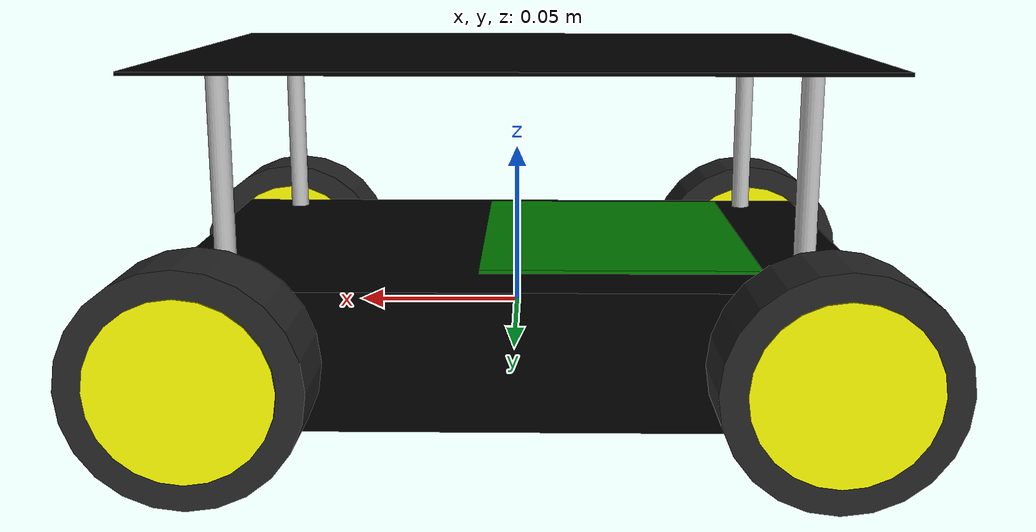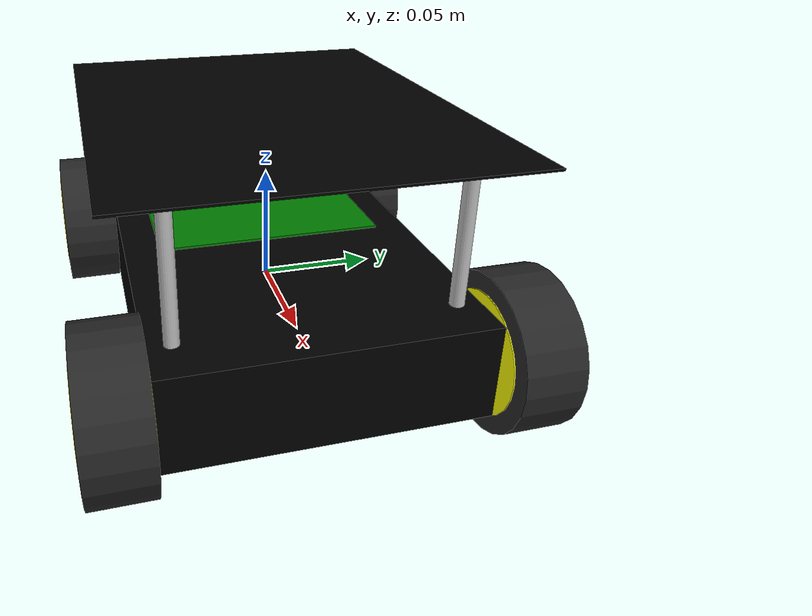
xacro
<?xml version="1.0"?>
<robot xmlns:xacro="http://www.ros.org/wiki/xacro" name="dfrobot_pirate">

  <xacro:include filename="$(find dfrobot_robots)/urdf/common.xacro" />

  <xacro:property name="base_plate_length" value="0.2" />
  <xacro:property name="base_plate_height" value="0.04" />
  <xacro:property name="base_plate_width" value="${0.18-2*wheel_width}" />

  <xacro:property name="spacer_length" value="0.06" />

  <link name="base_link">
    <visual>
      <geometry>
        <box size="${base_plate_length} ${base_plate_width} ${base_plate_height}"/>
      </geometry>
      <material name="black"/>
    </visual>
    <collision>
      <geometry>
        <box size="${base_plate_length} ${base_plate_width} ${base_plate_height}"/>
      </geometry>
    </collision>
  </link>

  <link name="top_plate">
    <visual>
      <geometry>
        <box size="${base_plate_length} ${base_plate_width+wheel_width} 0.001"/>
      </geometry>
      <material name="black"/>
    </visual>
    <collision>
      <geometry>
        <box size="${base_plate_length} ${base_plate_width+wheel_width} 0.001"/>
      </geometry>
    </collision>
  </link>

  <joint name="top_plate_to_base_joint" type="fixed">
    <parent link="base_link"/>
    <child link="top_plate"/>
    <origin rpy="0 0 0" xyz="0 0 ${spacer_length+base_plate_height/2}"/>
  </joint>

  <joint name="controlboard_to_base_joint" type="fixed">
    <parent link="base_link"/>
    <child link="control_board"/>
    <origin rpy="0 0 0" xyz="-0.03 0 ${base_plate_height/2 + 0.002}"/>
  </joint>

  <xacro:macro name="spacer" params="suffix *origin">
    <link name="spacer_${suffix}">
      <visual>
        <geometry>
          <cylinder length="${spacer_length}" radius="0.003"/>
        </geometry>
        <material name="silver"/>
      </visual>
    </link>

    <joint name="base_to_spacer${suffix}_joint" type="fixed">
      <parent link="base_link"/>
      <child link="spacer_${suffix}"/>
      <xacro:insert_block name="origin" />
    </joint>
  </xacro:macro>

  <xacro:spacer suffix="front_left">
    <origin rpy="0 0 0" xyz="${base_plate_length/2 - 0.02} ${base_plate_width/2 - 0.01} ${(base_plate_height+spacer_length)/2}"/>
  </xacro:spacer>
  <xacro:spacer suffix="front_right">
    <origin rpy="0 0 0" xyz="${base_plate_length/2 - 0.02} ${-(base_plate_width/2 - 0.01)} ${(base_plate_height+spacer_length)/2}"/>
  </xacro:spacer>
  <xacro:spacer suffix="rear_left">
    <origin rpy="0 0 0" xyz="${-(base_plate_length/2 - 0.02)} ${base_plate_width/2 - 0.01} ${(base_plate_height+spacer_length)/2}"/>
  </xacro:spacer>
  <xacro:spacer suffix="rear_right">
    <origin rpy="0 0 0" xyz="${-(base_plate_length/2 - 0.02)} ${-(base_plate_width/2 - 0.01)} ${(base_plate_height+spacer_length)/2}"/>
  </xacro:spacer>

  <xacro:wheel suffix="front_left" parent="base_link">
    <origin rpy="${-pi/2}  0 0" xyz="${base_plate_length/2 - 0.015} ${base_plate_width/2+wheel_width/2} 0"/>
  </xacro:wheel>
  <xacro:wheel suffix="front_right"  parent="base_link">
    <origin rpy="${-pi/2} 0 0" xyz="${base_plate_length/2 - 0.015} ${-(base_plate_width/2+wheel_width/2)} 0"/>
  </xacro:wheel>
  <xacro:wheel suffix="rear_left" parent="base_link">
    <origin rpy="${-pi/2}  0 0" xyz="${-base_plate_length/2 + 0.015} ${base_plate_width/2+wheel_width/2} 0"/>
  </xacro:wheel>
  <xacro:wheel suffix="rear_right"  parent="base_link">
    <origin rpy="${-pi/2} 0 0" xyz="${-base_plate_length/2 + 0.015} ${-(base_plate_width/2+wheel_width/2)} 0"/>
  </xacro:wheel>

</robot>

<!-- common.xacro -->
<robot xmlns:xacro="http://www.ros.org/wiki/xacro">

  <xacro:include filename="$(find dfrobot_robots)/urdf/materials.xacro" />

  <!-- Wheels -->
  <xacro:property name="wheel_radius" value="0.0325" />
  <xacro:property name="wheel_rim_radius" value="0.025" />
  <xacro:property name="wheel_width" value="0.025" />

  <xacro:macro name="wheel" params="suffix parent *origin">
    <link name="wheel_${suffix}">
      <visual>
        <geometry>
          <cylinder length="${wheel_width}" radius="${wheel_radius}"/>
        </geometry>
        <material name="rubber"/>
      </visual>
      <collision>
        <geometry>
          <cylinder length="${wheel_width}" radius="${wheel_radius}"/>
        </geometry>
      </collision>
      <inertial>
        <mass value="0.2"/>
        <inertia ixx="1e-6" ixy="0" ixz="0" iyy="1e-6" iyz="0" izz="1e-6" />
      </inertial>
    </link>

    <gazebo reference="wheel_${suffix}">
      <mu1 value="200.0"/>
      <mu2 value="100.0"/>
      <kp value="10000000.0" />
      <kd value="1.0" />
      <material>Gazebo/DarkGrey</material>
    </gazebo>

    <joint name="base_to_wheel_${suffix}_joint" type="continuous">
      <parent link="${parent}"/>
      <child link="wheel_${suffix}"/>
      <axis xyz="0 0 1"/>
      <xacro:insert_block name="origin" />
    </joint>

    <transmission name="wheel_${suffix}_trans">
      <type>transmission_interface/SimpleTransmission</type>
      <actuator name="wheel_${suffix}_motor">
        <mechanicalReduction>1</mechanicalReduction>
      </actuator>
      <joint name="base_to_wheel_${suffix}_joint">
        <hardwareInterface>hardware_interface/VelocityJointInterface</hardwareInterface>
      </joint>
    </transmission>

    <link name="wheel_rim_${suffix}">
      <visual>
        <geometry>
          <cylinder length="${0.001+wheel_width}" radius="${wheel_rim_radius}"/>
        </geometry>
        <material name="yellow"/>
      </visual>
      <inertial>
        <mass value="0.1"/>
        <inertia ixx="1e-6" ixy="0" ixz="0" iyy="1e-6" iyz="0" izz="1e-6" />
      </inertial>
    </link>

    <gazebo reference="wheel_rim_${suffix}">
      <material>Gazebo/Yellow</material>
    </gazebo>

    <joint name="wheel_${suffix}_to_rim_joint" type="fixed">
      <parent link="wheel_${suffix}"/>
      <child link="wheel_rim_${suffix}"/>
      <origin rpy="0 0 0" xyz="0 0 0"/>
    </joint>

  </xacro:macro>

  <!-- Control board -->
  <link name="control_board">
    <visual>
      <geometry>
        <box size="0.08 0.1 0.001"/>
      </geometry>
      <material name="green"/>
    </visual>
    <inertial>
      <mass value="0.1"/>
      <inertia ixx="1e-6" ixy="0" ixz="0" iyy="1e-6" iyz="0" izz="1e-6" />
    </inertial>
  </link>

  <gazebo reference="control_board">
    <material>Gazebo/Green</material>
  </gazebo>

  <!-- ros_control plugin -->
  <gazebo>
    <plugin name="gazebo_ros_control" filename="libgazebo_ros_control.so">
      <robotSimType>gazebo_ros_control/DefaultRobotHWSim</robotSimType>
    </plugin>
  </gazebo>

</robot>

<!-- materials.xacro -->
<robot>

 <material name="black">
    <color rgba="0 0 0 1"/>
  </material>

  <material name="yellow">
    <color rgba="1 1 0 1"/>
  </material>

  <material name="green">
    <color rgba="0 0.5 0 1"/>
  </material>

  <material name="silver">
    <color rgba="0.75 0.75 0.75 1"/>
  </material>
  <material name="rubber">
    <color rgba="0.15 0.15 0.15 1"/>
  </material>

</robot>
